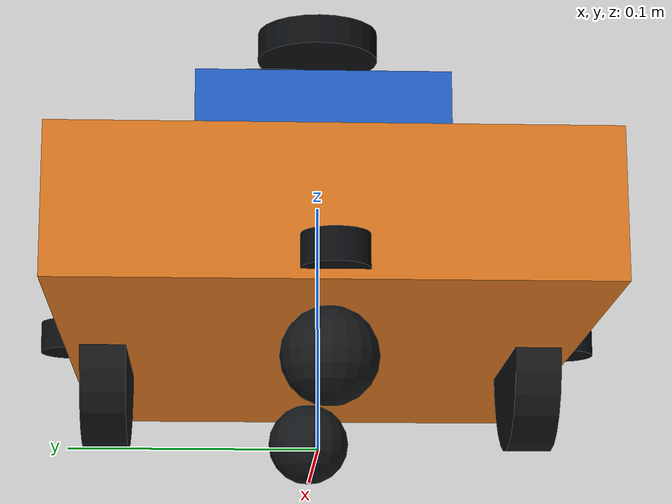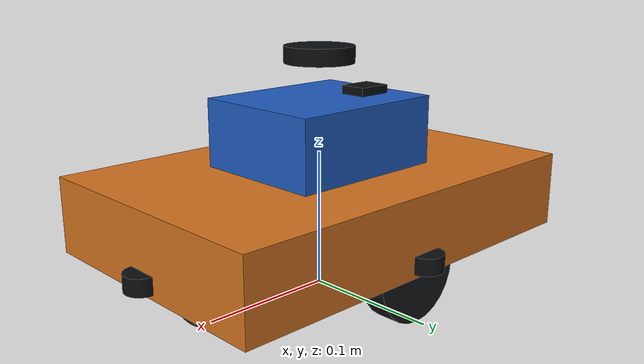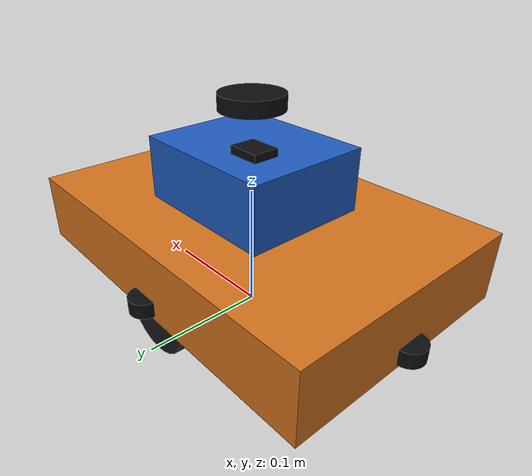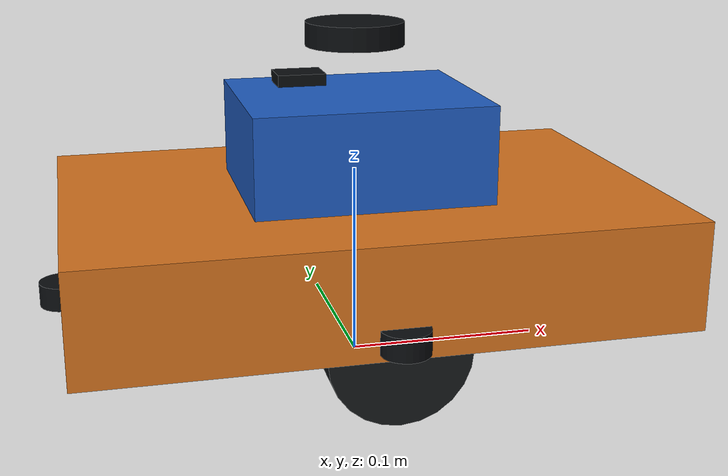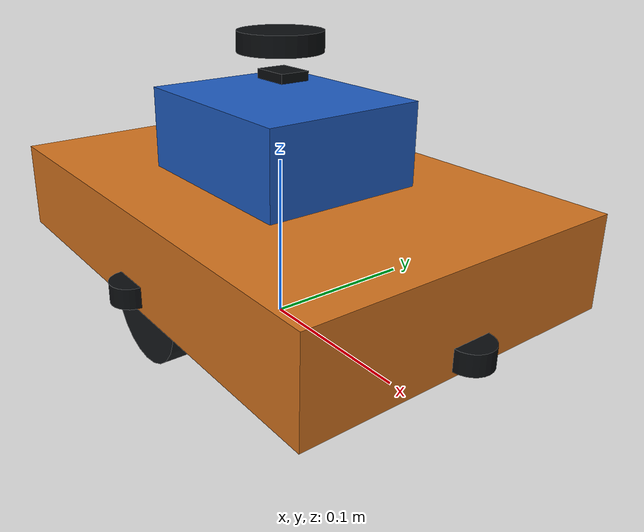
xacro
<?xml version="1.0"?>
<robot name="r07_rover" xmlns:xacro="http://www.ros.org/wiki/xacro">
  <!-- Simulation twin. Confirm all estimate-marked dimensions before using as a physical reference. -->
  <xacro:property name="body_length" value="0.30"/>
  <xacro:property name="body_width" value="0.20"/>
  <xacro:property name="body_height" value="0.055"/>
  <xacro:property name="wheel_radius" value="0.035"/>
  <xacro:property name="wheel_track" value="0.17"/>
  <xacro:property name="wheel_width" value="0.018"/>
  <xacro:property name="box_length" value="0.12"/> <!-- placeholder: measure CAS Box -->
  <xacro:property name="box_width" value="0.10"/>  <!-- placeholder: measure CAS Box -->
  <xacro:property name="box_height" value="0.06"/> <!-- placeholder: measure CAS Box -->

  <material name="rover_orange"><color rgba="0.83 0.45 0.12 1"/></material>
  <material name="box_blue"><color rgba="0.12 0.36 0.75 1"/></material>
  <material name="rubber"><color rgba="0.08 0.09 0.10 1"/></material>
  <material name="sensor_black"><color rgba="0.04 0.05 0.06 1"/></material>

  <link name="base_link">
    <inertial><origin xyz="0 0 0.065"/><mass value="2.0"/><inertia ixx="0.010" ixy="0" ixz="0" iyy="0.018" iyz="0" izz="0.020"/></inertial>
    <visual><origin xyz="0 0 0.063"/><geometry><box size="${body_length} ${body_width} ${body_height}"/></geometry><material name="rover_orange"/></visual>
    <collision><origin xyz="0 0 0.063"/><geometry><box size="${body_length} ${body_width} ${body_height}"/></geometry></collision>
  </link>

  <xacro:macro name="drive_wheel" params="side y">
    <link name="${side}_wheel">
      <inertial><mass value="0.12"/><inertia ixx="0.00005" ixy="0" ixz="0" iyy="0.00008" iyz="0" izz="0.00005"/></inertial>
      <visual><origin rpy="1.57079632679 0 0"/><geometry><cylinder radius="${wheel_radius}" length="${wheel_width}"/></geometry><material name="rubber"/></visual>
      <collision><origin rpy="1.57079632679 0 0"/><geometry><cylinder radius="${wheel_radius}" length="${wheel_width}"/></geometry></collision>
    </link>
    <joint name="${side}_wheel_joint" type="continuous">
      <parent link="base_link"/><child link="${side}_wheel"/>
      <origin xyz="0 ${y} ${wheel_radius}" rpy="0 0 0"/><axis xyz="0 1 0"/>
      <limit effort="4.0" velocity="20.0"/><dynamics damping="0.02" friction="0.01"/>
    </joint>
  </xacro:macro>
  <xacro:drive_wheel side="left" y="${wheel_track/2}"/>
  <xacro:drive_wheel side="right" y="-${wheel_track/2}"/>

  <!-- Passive caster approximation; actual rover undercarriage must be measured. -->
  <link name="front_caster"><inertial><mass value="0.025"/><inertia ixx="0.00001" ixy="0" ixz="0" iyy="0.00001" iyz="0" izz="0.00001"/></inertial><visual><geometry><sphere radius="0.018"/></geometry><material name="rubber"/></visual><collision><geometry><sphere radius="0.018"/></geometry></collision></link>
  <joint name="front_caster_fixed" type="fixed"><parent link="base_link"/><child link="front_caster"/><origin xyz="0.105 0 0.018"/></joint>
  <link name="rear_caster"><inertial><mass value="0.025"/><inertia ixx="0.00001" ixy="0" ixz="0" iyy="0.00001" iyz="0" izz="0.00001"/></inertial><visual><geometry><sphere radius="0.018"/></geometry><material name="rubber"/></visual><collision><geometry><sphere radius="0.018"/></geometry></collision></link>
  <joint name="rear_caster_fixed" type="fixed"><parent link="base_link"/><child link="rear_caster"/><origin xyz="-0.105 0 0.018"/></joint>

  <link name="cas_box_link">
    <inertial><origin xyz="0 0 0.11"/><mass value="0.30"/><inertia ixx="0.0006" ixy="0" ixz="0" iyy="0.0006" iyz="0" izz="0.0006"/></inertial>
    <visual><origin xyz="0 0 0.11"/><geometry><box size="${box_length} ${box_width} ${box_height}"/></geometry><material name="box_blue"/></visual>
    <collision><origin xyz="0 0 0.11"/><geometry><box size="${box_length} ${box_width} ${box_height}"/></geometry></collision>
  </link>
  <joint name="cas_box_mount" type="fixed"><parent link="base_link"/><child link="cas_box_link"/><origin xyz="0 0 0"/></joint>

  <link name="lidar_link"><visual><geometry><cylinder radius="0.025" length="0.012"/></geometry><material name="sensor_black"/></visual></link>
  <joint name="lidar_mount" type="fixed"><parent link="base_link"/><child link="lidar_link"/><origin xyz="0 0 0.17"/></joint>
  <link name="imu_link"/>
  <joint name="imu_mount" type="fixed"><parent link="base_link"/><child link="imu_link"/><origin xyz="0 0 0.105"/></joint>

  <!-- NEO-6M GPS module: model position is a placeholder; outdoor georeference is not surveyed. -->
  <link name="gps_link">
    <visual><geometry><box size="0.025 0.020 0.006"/></geometry><material name="sensor_black"/></visual>
  </link>
  <joint name="gps_mount" type="fixed"><parent link="base_link"/><child link="gps_link"/><origin xyz="-0.025 0.020 0.145"/></joint>
  <gazebo reference="gps_link">
    <sensor name="neo6m_sim" type="gps">
      <always_on>true</always_on><update_rate>1</update_rate><visualize>false</visualize>
      <gps>
        <position_sensing>
          <horizontal><noise type="gaussian"><mean>0</mean><stddev>1.5</stddev></noise></horizontal>
          <vertical><noise type="gaussian"><mean>0</mean><stddev>3.0</stddev></noise></vertical>
        </position_sensing>
      </gps>
      <plugin name="gps_ros_plugin" filename="libgazebo_ros_gps_sensor.so">
        <ros><namespace>/r07</namespace><remapping>~/out:=gps/fix</remapping></ros>
        <frame_name>gps_link</frame_name>
      </plugin>
    </sensor>
  </gazebo>

  <xacro:macro name="ultrasonic" params="name x y yaw">
    <link name="${name}_link"><visual><geometry><cylinder radius="0.012" length="0.012"/></geometry><material name="sensor_black"/></visual></link>
    <joint name="${name}_mount" type="fixed"><parent link="base_link"/><child link="${name}_link"/><origin xyz="${x} ${y} 0.045" rpy="0 0 ${yaw}"/></joint>
    <gazebo reference="${name}_link">
      <sensor name="${name}_sim" type="ray">
        <always_on>true</always_on><visualize>false</visualize><update_rate>10</update_rate>
        <ray><scan><horizontal><samples>1</samples><resolution>1</resolution><min_angle>0</min_angle><max_angle>0</max_angle></horizontal></scan>
          <range><min>0.02</min><max>2.50</max><resolution>0.01</resolution></range>
          <noise><type>gaussian</type><mean>0.0</mean><stddev>0.005</stddev></noise>
        </ray>
        <plugin name="${name}_range_plugin" filename="libgazebo_ros_ray_sensor.so">
          <ros><namespace>/r07</namespace><remapping>~/out:=${name}/range</remapping></ros>
          <output_type>sensor_msgs/Range</output_type><frame_name>${name}_link</frame_name>
        </plugin>
      </sensor>
    </gazebo>
  </xacro:macro>
  <!-- Bearings are provisional. In particular front_angled is assumed 35 degrees to the right. -->
  <xacro:ultrasonic name="us_front" x="0.15" y="0" yaw="0"/>
  <xacro:ultrasonic name="us_left" x="0" y="0.10" yaw="1.57079632679"/>
  <xacro:ultrasonic name="us_right" x="0" y="-0.10" yaw="-1.57079632679"/>
  <xacro:ultrasonic name="us_back" x="-0.15" y="0" yaw="3.14159265359"/>
  <xacro:ultrasonic name="us_front_angled" x="0.12" y="-0.065" yaw="-0.6108652382"/>

  <gazebo reference="lidar_link">
    <sensor name="ld20_sim" type="ray">
      <always_on>true</always_on><visualize>true</visualize><update_rate>10</update_rate>
      <ray><scan><horizontal><samples>90</samples><resolution>1</resolution><min_angle>0</min_angle><max_angle>6.28318530718</max_angle></horizontal></scan>
        <range><min>0.10</min><max>3.50</max><resolution>0.01</resolution></range>
        <noise><type>gaussian</type><mean>0.0</mean><stddev>0.008</stddev></noise>
      </ray>
      <plugin name="ld20_ros_plugin" filename="libgazebo_ros_ray_sensor.so">
        <ros><namespace>/r07</namespace><remapping>~/out:=scan</remapping></ros>
        <output_type>sensor_msgs/LaserScan</output_type><frame_name>lidar_link</frame_name>
      </plugin>
    </sensor>
  </gazebo>
  <gazebo reference="imu_link">
    <sensor name="bno055_sim" type="imu"><always_on>true</always_on><update_rate>50</update_rate>
      <imu><angular_velocity><x><noise type="gaussian"><mean>0</mean><stddev>0.002</stddev></noise></x><y><noise type="gaussian"><mean>0</mean><stddev>0.002</stddev></noise></y><z><noise type="gaussian"><mean>0</mean><stddev>0.003</stddev></noise></z></angular_velocity>
      <linear_acceleration><x><noise type="gaussian"><mean>0</mean><stddev>0.02</stddev></noise></x><y><noise type="gaussian"><mean>0</mean><stddev>0.02</stddev></noise></y><z><noise type="gaussian"><mean>0</mean><stddev>0.02</stddev></noise></z></linear_acceleration></imu>
      <plugin name="imu_ros_plugin" filename="libgazebo_ros_imu_sensor.so"><ros><namespace>/r07</namespace><remapping>~/out:=imu</remapping></ros><frame_name>imu_link</frame_name></plugin>
    </sensor></gazebo>

  <gazebo>
    <plugin name="r07_diff_drive" filename="libgazebo_ros_diff_drive.so">
      <ros><namespace>/r07</namespace></ros>
      <update_rate>50</update_rate><left_joint>left_wheel_joint</left_joint><right_joint>right_wheel_joint</right_joint>
      <wheel_separation>${wheel_track}</wheel_separation><wheel_diameter>0.07</wheel_diameter>
      <command_topic>cmd_vel</command_topic><odometry_topic>odom_sim_only</odometry_topic>
      <odometry_frame>odom</odometry_frame><robot_base_frame>base_link</robot_base_frame>
      <publish_odom>true</publish_odom><publish_odom_tf>true</publish_odom_tf><publish_wheel_tf>true</publish_wheel_tf>
    </plugin>
  </gazebo>
</robot>
